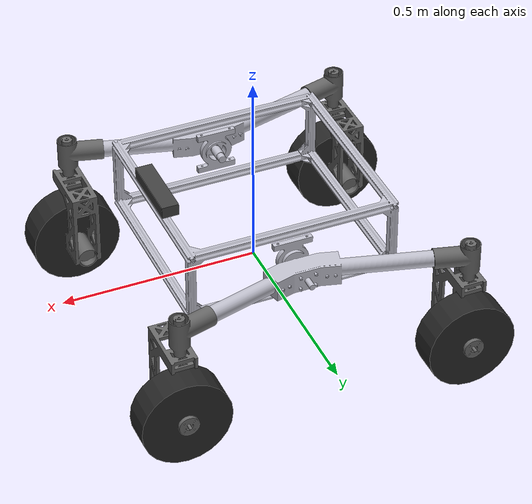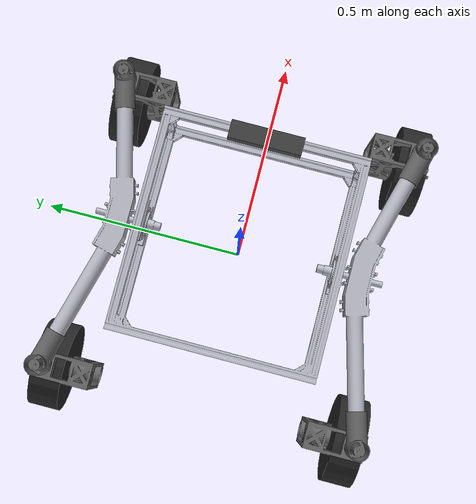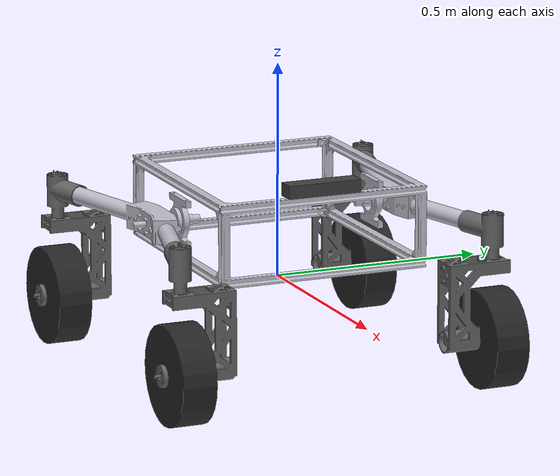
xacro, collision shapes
<?xml version="1.0"?>
<!-- Athena Rover URDF v3 with STL mesh references. Generated from Athena.step. -->
<!-- All meshes exported in mm; scale="0.001 0.001 0.001" converts to metres.   -->
<!-- Package path: package://athena_description/meshes/                          -->
<robot xmlns:xacro="http://www.ros.org/wiki/xacro" name="athena_rover">

  <material name="aluminium">
    <color rgba="0.75 0.75 0.80 1.0"/>
  </material>
  <material name="rubber">
    <color rgba="0.15 0.15 0.15 1.0"/>
  </material>
  <material name="motor_grey">
    <color rgba="0.4 0.4 0.4 1.0"/>
  </material>
  <material name="tpu_orange">
    <color rgba="0.9 0.45 0.1 1.0"/>
  </material>
  <material name="zed_dark_grey">
    <color rgba="0.25 0.25 0.25 1.0"/>
  </material>
  <material name="zed_lens">
    <color rgba="0.02 0.02 0.03 1.0"/>
  </material>

  <link name="base_footprint"/>

  <joint name="base_footprint_to_base" type="fixed">
    <parent link="base_footprint"/>
    <child  link="base_link"/>
    <origin xyz="0.0 0.0 0.155" rpy="0 0 0"/>
  </joint>

  <link name="base_link">
    <visual>
      <origin xyz="-0.2600 0.7500 -0.0850" rpy="0 0 0"/>
      <geometry>
        <mesh filename="package://athena_description/meshes/visual/chassis.stl"
              scale="0.001 0.001 0.001"/>
      </geometry>
      <material name="aluminium"/>
    </visual>
    <collision>
      <origin xyz="-0.2600 0.7500 -0.0850" rpy="0 0 0"/>
      <geometry>
        <mesh filename="package://athena_description/meshes/collision/chassis.stl"
              scale="0.001 0.001 0.001"/>
      </geometry>
    </collision>
    <inertial>
      <mass value="8.0"/>
      <origin xyz="-0.00507 0.0 -0.050" rpy="0 0 0"/>
      <inertia ixx="0.400" ixy="0.0" ixz="0.0"
               iyy="0.180" iyz="0.0"
               izz="0.500"/>
    </inertial>
  </link>

  <link name="bogey_left">
    <visual>
      <origin xyz="-0.2600 -1.0250 0.0645" rpy="0 3.1416 3.1416"/>
      <geometry>
        <mesh filename="package://athena_description/meshes/visual/bogey_arm.stl"
              scale="0.001 0.001 0.001"/>
      </geometry>
      <material name="aluminium"/>
    </visual>
    <collision>
      <origin xyz="-0.2600 -1.0250 0.0645" rpy="0 3.1416 3.1416"/>
      <geometry>
        <mesh filename="package://athena_description/meshes/collision/bogey_arm.stl"
              scale="0.001 0.001 0.001"/>
      </geometry>
    </collision>
    <inertial>
      <mass value="1.2"/>
      <origin xyz="0.0 0.275 0.0" rpy="0 0 0"/>
      <inertia ixx="0.030" ixy="0.0" ixz="0.0"
               iyy="0.002" iyz="0.0"
               izz="0.030"/>
    </inertial>
  </link>

  <joint name="bogey_left_pivot" type="revolute">
    <parent link="base_link"/>
    <child  link="bogey_left"/>
    <origin xyz="0.0 0.275 0.0" rpy="0 0 0"/>
    <axis xyz="0 1 0"/>
    <limit lower="-0.5236" upper="0.5236" effort="0" velocity="1.0"/>
    <dynamics damping="0.5" friction="0.1"/>
  </joint>

  <link name="bogey_right">
    <visual>
      <origin xyz="-0.2600 1.0250 -0.0645" rpy="0 0 0"/>
      <geometry>
        <mesh filename="package://athena_description/meshes/visual/bogey_arm.stl"
              scale="0.001 0.001 0.001"/>
      </geometry>
      <material name="aluminium"/>
    </visual>
    <collision>
      <origin xyz="-0.2600 1.0250 -0.0645" rpy="0 0 0"/>
      <geometry>
        <mesh filename="package://athena_description/meshes/collision/bogey_arm.stl"
              scale="0.001 0.001 0.001"/>
      </geometry>
    </collision>
    <inertial>
      <mass value="1.2"/>
      <origin xyz="0.0 -0.275 0.0" rpy="0 0 0"/>
      <inertia ixx="0.030" ixy="0.0" ixz="0.0"
               iyy="0.002" iyz="0.0"
               izz="0.030"/>
    </inertial>
  </link>

  <joint name="bogey_right_pivot" type="revolute">
    <parent link="base_link"/>
    <child  link="bogey_right"/>
    <origin xyz="0.0 -0.275 0.0" rpy="0 0 0"/>
    <axis xyz="0 1 0"/>
    <limit lower="-0.5236" upper="0.5236" effort="0" velocity="1.0"/>
    <dynamics damping="0.5" friction="0.1"/>
  </joint>

  <!-- FRONT-LEFT -->
  <link name="steer_housing_front_left">
    <visual>
      <origin rpy="0 0 3.1416" xyz="0.6145 -1.1306 -0.1077"/>
      <geometry>
        <mesh filename="package://athena_description/meshes/visual/SteeringMotorHousing.stl" scale="0.001 0.001 0.001"/>
      </geometry>
      <material name="motor_grey"/>
    </visual>
    <collision>
      <origin rpy="0 0 3.1416" xyz="0.6145 -1.1306 -0.1077"/>
      <geometry>
        <mesh filename="package://athena_description/meshes/collision/SteeringMotorHousing.stl" scale="0.001 0.001 0.001"/>
      </geometry>
    </collision>
    <inertial>
      <mass value="0.2"/>
      <inertia ixx="0.0001" ixy="0" ixz="0" iyy="0.0001" iyz="0" izz="0.00005"/>
    </inertial>
  </link>
  <joint name="steer_housing_mount_front_left" type="fixed">
    <parent link="bogey_left"/>
    <child link="steer_housing_front_left"/>
    <origin rpy="0 0 0" xyz="-0.39291 0.11681 0.0425000"/>
  </joint>
  <link name="steer_coupler_front_left">
    <visual>
      <origin rpy="0 0 0" xyz="-0.6145 1.1307 0.0063"/>
      <geometry>
        <mesh filename="package://athena_description/meshes/visual/stearing.stl" scale="0.001 0.001 0.001"/>
      </geometry>
      <material name="motor_grey"/>
    </visual>
    <collision>
      <origin rpy="0 0 0" xyz="-0.6145 1.1307 0.0063"/>
      <geometry>
        <mesh filename="package://athena_description/meshes/collision/stearing.stl" scale="0.001 0.001 0.001"/>
      </geometry>
    </collision>
    <inertial>
      <mass value="0.15"/>
      <inertia ixx="0.0001" ixy="0" ixz="0" iyy="0.0001" iyz="0" izz="0.00005"/>
    </inertial>
  </link>
  <joint name="steer_front_left" type="revolute">
    <parent link="steer_housing_front_left"/>
    <child link="steer_coupler_front_left"/>
    <origin rpy="0 0 0" xyz="0.0 0.0 -0.111"/>
    <axis xyz="0 0 1"/>
    <limit effort="10" lower="-1.57" upper="1.57" velocity="1.0"/>
    <dynamics damping="0.2" friction="0.05"/>
  </joint>
  <link name="wheel_front_left">
    <visual>
      <origin rpy="0 0 0" xyz="0.4497 0.3642 0.1895"/>
      <geometry>
        <mesh filename="package://athena_description/meshes/visual/wheel.stl" scale="0.001 0.001 0.001"/>
      </geometry>
      <material name="rubber"/>
    </visual>
    <collision>
      <origin rpy="1.5708 0 0" xyz="0 0 0"/>
      <geometry>
        <cylinder length="0.080" radius="0.115"/>
      </geometry>
    </collision>
    <inertial>
      <mass value="0.8"/>
      <inertia ixx="0.006" ixy="0" ixz="0" iyy="0.010" iyz="0" izz="0.006"/>
    </inertial>
  </link>
  <joint name="wheel_front_left_spin" type="continuous">
    <parent link="steer_coupler_front_left"/>
    <child link="wheel_front_left"/>
    <origin rpy="0 0 0" xyz="0.0 0.0 -0.186"/>
    <axis xyz="0 1 0"/>
    <dynamics damping="0.01" friction="0.05"/>
    <limit upper="3.14" velocity="10.0" effort="100.0"/>
  </joint>
  <!-- REAR-LEFT -->
  <link name="steer_housing_rear_left">
    <visual>
      <origin rpy="0 0 0.5317" xyz="-1.1029 0.6629 -0.1077"/>
      <geometry>
        <mesh filename="package://athena_description/meshes/visual/SteeringMotorHousing.stl" scale="0.001 0.001 0.001"/>
      </geometry>
      <material name="motor_grey"/>
    </visual>
    <collision>
      <origin rpy="0 0 0.5317" xyz="-1.1029 0.6629 -0.1077"/>
      <geometry>
        <mesh filename="package://athena_description/meshes/collision/SteeringMotorHousing.stl" scale="0.001 0.001 0.001"/>
      </geometry>
    </collision>
    <inertial>
      <mass value="0.2"/>
      <inertia ixx="0.0001" ixy="0" ixz="0" iyy="0.0001" iyz="0" izz="0.00005"/>
    </inertial>
  </link>
  <joint name="steer_housing_mount_rear_left" type="fixed">
    <parent link="bogey_left"/>
    <child link="steer_housing_rear_left"/>
    <origin rpy="0 0 0" xyz="0.34458 0.10398 0.0425000"/>
  </joint>
  <link name="steer_coupler_rear_left">
    <visual>
      <origin rpy="0 0 0" xyz="-0.6145 1.1307 0.0063"/>
      <geometry>
        <mesh filename="package://athena_description/meshes/visual/stearing.stl" scale="0.001 0.001 0.001"/>
      </geometry>
      <material name="motor_grey"/>
    </visual>
    <collision>
      <origin rpy="0 0 0" xyz="-0.6145 1.1307 0.0063"/>
      <geometry>
        <mesh filename="package://athena_description/meshes/collision/stearing.stl" scale="0.001 0.001 0.001"/>
      </geometry>
    </collision>
    <inertial>
      <mass value="0.15"/>
      <inertia ixx="0.0001" ixy="0" ixz="0" iyy="0.0001" iyz="0" izz="0.00005"/>
    </inertial>
  </link>
  <joint name="steer_rear_left" type="revolute">
    <parent link="steer_housing_rear_left"/>
    <child link="steer_coupler_rear_left"/>
    <origin rpy="0 0 0" xyz="0.0 0.0 -0.111"/>
    <axis xyz="0 0 1"/>
    <limit effort="10" lower="-1.57" upper="1.57" velocity="1.0"/>
    <dynamics damping="0.2" friction="0.05"/>
  </joint>
  <link name="wheel_rear_left">
    <visual>
      <origin rpy="0 0 0" xyz="0.4497 0.3642 0.1895"/>
      <geometry>
        <mesh filename="package://athena_description/meshes/visual/wheel.stl" scale="0.001 0.001 0.001"/>
      </geometry>
      <material name="rubber"/>
    </visual>
    <collision>
      <origin rpy="1.5708 0 0" xyz="0 0 0"/>
      <geometry>
        <cylinder length="0.080" radius="0.115"/>
      </geometry>
    </collision>
    <inertial>
      <mass value="0.8"/>
      <inertia ixx="0.006" ixy="0" ixz="0" iyy="0.010" iyz="0" izz="0.006"/>
    </inertial>
  </link>
  <joint name="wheel_rear_left_spin" type="continuous">
    <parent link="steer_coupler_rear_left"/>
    <child link="wheel_rear_left"/>
    <origin rpy="0 0 0" xyz="0.0 0.0 -0.186"/>
    <axis xyz="0 1 0"/>
    <dynamics damping="0.01" friction="0.05"/>
  </joint>
  <!-- FRONT-RIGHT (mirrored) -->
  <link name="steer_housing_front_right">
    <visual>
      <origin rpy="0 0 3.6692" xyz="1.1002 -0.6674 -0.1077"/>
      <geometry>
        <mesh filename="package://athena_description/meshes/visual/SteeringMotorHousing.stl" scale="0.001 0.001 0.001"/>
      </geometry>
      <material name="motor_grey"/>
    </visual>
    <collision>
      <origin rpy="0 0 3.6692" xyz="1.1002 -0.6674 -0.1077"/>
      <geometry>
        <mesh filename="package://athena_description/meshes/collision/SteeringMotorHousing.stl" scale="0.001 0.001 0.001"/>
      </geometry>
    </collision>
    <inertial>
      <mass value="0.2"/>
      <inertia ixx="0.0001" ixy="0" ixz="0" iyy="0.0001" iyz="0" izz="0.00005"/>
    </inertial>
  </link>
  <joint name="steer_housing_mount_front_right" type="fixed">
    <parent link="bogey_right"/>
    <child link="steer_housing_front_right"/>
    <origin rpy="0 0 0" xyz="-0.39291 -0.11681 0.0425000"/>
  </joint>
  <link name="steer_coupler_front_right">
    <visual>
      <origin rpy="0 0 3.1416" xyz="0.6145 -1.1307 0.0063"/>
      <geometry>
        <mesh filename="package://athena_description/meshes/visual/stearing.stl" scale="0.001 0.001 0.001"/>
      </geometry>
      <material name="motor_grey"/>
    </visual>
    <collision>
      <origin rpy="0 0 3.1416" xyz="0.6145 -1.1307 0.0063"/>
      <geometry>
        <mesh filename="package://athena_description/meshes/collision/stearing.stl" scale="0.001 0.001 0.001"/>
      </geometry>
    </collision>
    <inertial>
      <mass value="0.15"/>
      <inertia ixx="0.0001" ixy="0" ixz="0" iyy="0.0001" iyz="0" izz="0.00005"/>
    </inertial>
  </link>
  <joint name="steer_front_right" type="revolute">
    <parent link="steer_housing_front_right"/>
    <child link="steer_coupler_front_right"/>
    <origin rpy="0 0 0" xyz="0.0 0.0 -0.111"/>
    <axis xyz="0 0 1"/>
    <limit effort="10" lower="-1.57" upper="1.57" velocity="1.0"/>
    <dynamics damping="0.2" friction="0.05"/>
  </joint>
  <link name="wheel_front_right">
    <visual>
      <origin rpy="0 0 3.1416" xyz="-0.4497 -0.3642 0.1895"/>
      <geometry>
        <mesh filename="package://athena_description/meshes/visual/wheel.stl" scale="0.001 0.001 0.001"/>
      </geometry>
      <material name="rubber"/>
    </visual>
    <collision>
      <origin rpy="1.5708 0 0" xyz="0 0 0"/>
      <geometry>
        <cylinder length="0.080" radius="0.115"/>
      </geometry>
    </collision>
    <inertial>
      <mass value="0.8"/>
      <inertia ixx="0.006" ixy="0" ixz="0" iyy="0.010" iyz="0" izz="0.006"/>
    </inertial>
  </link>
  <joint name="wheel_front_right_spin" type="continuous">
    <parent link="steer_coupler_front_right"/>
    <child link="wheel_front_right"/>
    <origin rpy="0 0 0" xyz="0.0 0.0 -0.186"/>
    <axis xyz="0 1 0"/>
    <dynamics damping="0.01" friction="0.05"/>
  </joint>
  <!-- REAR-RIGHT (mirrored) -->
  <link name="steer_housing_rear_right">
    <visual>
      <origin rpy="0 0 0" xyz="-0.6145 1.1306 -0.1077"/>
      <geometry>
        <mesh filename="package://athena_description/meshes/visual/SteeringMotorHousing.stl" scale="0.001 0.001 0.001"/>
      </geometry>
      <material name="motor_grey"/>
    </visual>
    <collision>
      <origin rpy="0 0 0" xyz="-0.6145 1.1306 -0.1077"/>
      <geometry>
        <mesh filename="package://athena_description/meshes/collision/SteeringMotorHousing.stl" scale="0.001 0.001 0.001"/>
      </geometry>
    </collision>
    <inertial>
      <mass value="0.2"/>
      <inertia ixx="0.0001" ixy="0" ixz="0" iyy="0.0001" iyz="0" izz="0.00005"/>
    </inertial>
  </link>
  <joint name="steer_housing_mount_rear_right" type="fixed">
    <parent link="bogey_right"/>
    <child link="steer_housing_rear_right"/>
    <origin rpy="0 0 0" xyz="0.34458 -0.10398 0.0425000"/>
  </joint>
  <link name="steer_coupler_rear_right">
    <visual>
      <origin rpy="0 0 3.1416" xyz="0.6145 -1.1307 0.0063"/>
      <geometry>
        <mesh filename="package://athena_description/meshes/visual/stearing.stl" scale="0.001 0.001 0.001"/>
      </geometry>
      <material name="motor_grey"/>
    </visual>
    <collision>
      <origin rpy="0 0 3.1416" xyz="0.6145 -1.1307 0.0063"/>
      <geometry>
        <mesh filename="package://athena_description/meshes/collision/stearing.stl" scale="0.001 0.001 0.001"/>
      </geometry>
    </collision>
    <inertial>
      <mass value="0.15"/>
      <inertia ixx="0.0001" ixy="0" ixz="0" iyy="0.0001" iyz="0" izz="0.00005"/>
    </inertial>
  </link>
  <joint name="steer_rear_right" type="revolute">
    <parent link="steer_housing_rear_right"/>
    <child link="steer_coupler_rear_right"/>
    <origin rpy="0 0 0" xyz="0.0 0.0 -0.111"/>
    <axis xyz="0 0 1"/>
    <limit effort="10" lower="-1.57" upper="1.57" velocity="1.0"/>
    <dynamics damping="0.2" friction="0.05"/>
  </joint>
  <link name="wheel_rear_right">
    <visual>
      <origin rpy="0 0 3.1416" xyz="-0.4497 -0.3642 0.1895"/>
      <geometry>
        <mesh filename="package://athena_description/meshes/visual/wheel.stl" scale="0.001 0.001 0.001"/>
      </geometry>
      <material name="rubber"/>
    </visual>
    <collision>
      <origin rpy="1.5708 0 0" xyz="0 0 0"/>
      <geometry>
        <cylinder length="0.080" radius="0.115"/>
      </geometry>
    </collision>
    <inertial>
      <mass value="0.8"/>
      <inertia ixx="0.006" ixy="0" ixz="0" iyy="0.010" iyz="0" izz="0.006"/>
    </inertial>
  </link>
  <joint name="wheel_rear_right_spin" type="continuous">
    <parent link="steer_coupler_rear_right"/>
    <child link="wheel_rear_right"/>
    <origin rpy="0 0 0" xyz="0.0 0.0 -0.186"/>
    <axis xyz="0 1 0"/>
    <dynamics damping="0.01" friction="0.05"/>
  </joint>

  <!-- ZED2i stereo camera (simulation model — no ZED SDK / driver)      -->
  <!-- Frame names and offsets mirror zed_description's `zed_camera`    -->
  <!-- macro for model=zed2i, so anything that consumes the real        -->
  <!-- zed-ros2-wrapper sees the same TF tree here:                     -->
  <!--   zed_camera_link                    : threaded screw-hole mount -->
  <!--   zed_camera_center                  : camera body centre        -->
  <!--   zed_left/right_camera_frame        : stereo lens frames        -->
  <!--   zed_left/right_camera_frame_optical: ROS optical frames        -->
  <!--     (x-right, y-down, z-forward — standard camera convention)    -->
  <!--   zed_imu_link                       : IMU sensing frame         -->
  <!-- Mount offset from base_link (front wall of the chassis):         -->
  <!--   x = +0.255 m  (chassis front wall spans x = 0.24 .. 0.27)      -->
  <!--   y =  0.000 m  (centred)                                        -->
  <!--   z = +0.095 m  (chassis top edge)                               -->
  <!-- ZED2i specs: baseline = 0.120 m, body = 0.175 x 0.030 x 0.033 m  -->

  <!-- Camera mount point (screw hole, bottom-centre of camera body) -->
  <link name="zed_camera_link"/>
  <joint name="zed_camera_joint" type="fixed">
    <parent link="base_link"/>
    <child link="zed_camera_link"/>
    <origin rpy="0 0 0" xyz="0.255 0.0 0.095"/>
  </joint>

  <!-- Camera body — carries the visual mesh and a simplified collision box -->
  <link name="zed_camera_center">
    <visual>
      <!-- screw_offset_x = -0.01 m for the zed2i (as in the Stereolabs macro) -->
      <origin rpy="0 0 0" xyz="-0.01 0.0 0.0"/>
      <geometry>
        <mesh filename="package://athena_description/meshes/visual/zed2i.stl"/>
      </geometry>
      <material name="zed_dark_grey"/>
    </visual>
    <visual>
      <origin rpy="0 1.5707963 0" xyz="0.0154 0.06 0.0"/>
      <geometry>
        <cylinder radius="0.0096" length="0.0006"/>
      </geometry>
      <material name="zed_lens"/>
    </visual>
    <visual>
      <origin rpy="0 1.5707963 0" xyz="0.0154 -0.06 0.0"/>
      <geometry>
        <cylinder radius="0.0096" length="0.0006"/>
      </geometry>
      <material name="zed_lens"/>
    </visual>
    <collision>
      <!-- Axis-aligned box around the mesh (0.0431 x 0.1753 x 0.0303 m) -->
      <origin rpy="0 0 0" xyz="-0.0064 0.0 0.0"/>
      <geometry>
        <box size="0.0431 0.1753 0.0303"/>
      </geometry>
    </collision>
    <inertial>
      <!-- ZED2i mass = 159 g, inertia modelled as a uniform box -->
      <mass value="0.159"/>
      <origin rpy="0 0 0" xyz="0.0 0.0 0.0"/>
      <inertia ixx="4.19e-4" ixy="0.0" ixz="0.0"
               iyy="3.67e-5" iyz="0.0"
               izz="4.32e-4"/>
    </inertial>
  </link>
  <joint name="zed_camera_center_joint" type="fixed">
    <parent link="zed_camera_link"/>
    <child link="zed_camera_center"/>
    <!-- raise by half the camera height (0.030/2 = 0.015 m) -->
    <origin rpy="0 0 0" xyz="0.0 0.0 0.015"/>
  </joint>

  <!-- Left camera frame (optical_offset_x=-0.01, baseline/2=0.06) -->
  <link name="zed_left_camera_frame"/>
  <joint name="zed_left_camera_joint" type="fixed">
    <parent link="zed_camera_center"/>
    <child link="zed_left_camera_frame"/>
    <origin rpy="0 0 0" xyz="-0.01 0.06 0.0"/>
  </joint>

  <!-- Left optical frame: ROS camera convention (x-right, y-down, z-fwd) -->
  <link name="zed_left_camera_optical_frame"/>
  <joint name="zed_left_camera_optical_joint" type="fixed">
    <parent link="zed_left_camera_frame"/>
    <child link="zed_left_camera_optical_frame"/>
    <origin rpy="-1.5707963 0.0 -1.5707963" xyz="0.0 0.0 0.0"/>
  </joint>

  <!-- Right camera frame (optical_offset_x=-0.01, -baseline/2=-0.06) -->
  <link name="zed_right_camera_frame"/>
  <joint name="zed_right_camera_joint" type="fixed">
    <parent link="zed_camera_center"/>
    <child link="zed_right_camera_frame"/>
    <origin rpy="0 0 0" xyz="-0.01 -0.06 0.0"/>
  </joint>

  <!-- Right optical frame -->
  <link name="zed_right_camera_optical_frame"/>
  <joint name="zed_right_camera_optical_joint" type="fixed">
    <parent link="zed_right_camera_frame"/>
    <child link="zed_right_camera_optical_frame"/>
    <origin rpy="-1.5707963 0.0 -1.5707963" xyz="0.0 0.0 0.0"/>
  </joint>

  <!-- IMU link — coincident with the camera centre (ZED2i IMU is body-integrated) -->
  <link name="zed_imu_link"/>
  <joint name="zed_imu_joint" type="fixed">
    <parent link="zed_camera_center"/>
    <child link="zed_imu_link"/>
    <origin rpy="0 0 0" xyz="0.0 0.0 0.0"/>
  </joint>

  <!-- Livox MID-360 LiDAR (visual + inertial only)                      -->
  <!-- geometry or occlude Genesis LiDAR rays. Visual + TF only.        -->
  <!-- Mounted centred on the chassis top rail at z = +0.175 m.         -->
  <!-- Kept in sync with the plain athena_rover-6.urdf.                 -->
  <link name="livox_mid360_link">
    <visual>
      <origin rpy="1.5708 0 0" xyz="0.0 0.0 0.0"/>
      <geometry>
        <mesh filename="package://athena_description/meshes/visual/livox-mid-360-asm.stl" scale="0.001 0.001 0.001"/>
      </geometry>
      <material name="aluminium"/>
    </visual>
    <inertial>
      <mass value="1.2"/>
      <origin rpy="0 0 0" xyz="0.0 0.0 0.0"/>
      <inertia ixx="1e-4" ixy="0.0" ixz="0.0" iyy="1e-4" iyz="0.0" izz="1e-4"/>
    </inertial>
  </link>
  <joint name="livox_mid360_joint" type="fixed">
    <parent link="base_link"/>
    <child link="livox_mid360_link"/>
    <origin rpy="0 0 0" xyz="0.0 0.0 0.175"/>
  </joint>

  <gazebo>
    <plugin filename="gz-sim-joint-controller-system" name="gz::sim::systems::JointController">
      <joint_name>wheel_front_left_spin</joint_name>
      <topic>/model/athena_rover/joint/wheel_front_left_spin/cmd_vel</topic>
    </plugin>
    <plugin filename="gz-sim-joint-controller-system" name="gz::sim::systems::JointController">
      <joint_name>wheel_front_right_spin</joint_name>
      <topic>/model/athena_rover/joint/wheel_front_right_spin/cmd_vel</topic>
    </plugin>
    <plugin filename="gz-sim-joint-controller-system" name="gz::sim::systems::JointController">
      <joint_name>wheel_rear_left_spin</joint_name>
      <topic>/model/athena_rover/joint/wheel_rear_left_spin/cmd_vel</topic>
    </plugin>
    <plugin filename="gz-sim-joint-controller-system" name="gz::sim::systems::JointController">
      <joint_name>wheel_rear_right_spin</joint_name>
      <topic>/model/athena_rover/joint/wheel_rear_right_spin/cmd_vel</topic>
    </plugin>
    <plugin filename="gz-sim-joint-position-controller-system" name="gz::sim::systems::JointPositionController">
      <joint_name>steer_front_left</joint_name>
      <topic>/model/athena_rover/joint/steer_front_left/cmd_pos</topic>
      <p_gain>1</p_gain>
    </plugin>
    <plugin filename="gz-sim-joint-position-controller-system" name="gz::sim::systems::JointPositionController">
      <joint_name>steer_front_right</joint_name>
      <topic>/model/athena_rover/joint/steer_front_right/cmd_pos</topic>
      <p_gain>1</p_gain>
    </plugin>
    <plugin filename="gz-sim-joint-position-controller-system" name="gz::sim::systems::JointPositionController">
      <joint_name>steer_rear_left</joint_name>
      <topic>/model/athena_rover/joint/steer_rear_left/cmd_pos</topic>
      <p_gain>1</p_gain>
    </plugin>
    <plugin filename="gz-sim-joint-position-controller-system" name="gz::sim::systems::JointPositionController">
      <joint_name>steer_rear_right</joint_name>
      <topic>/model/athena_rover/joint/steer_rear_right/cmd_pos</topic>
      <p_gain>1</p_gain>
    </plugin>
  </gazebo>

</robot>
